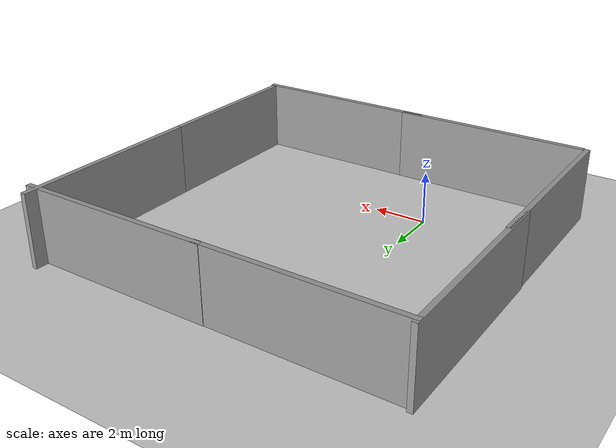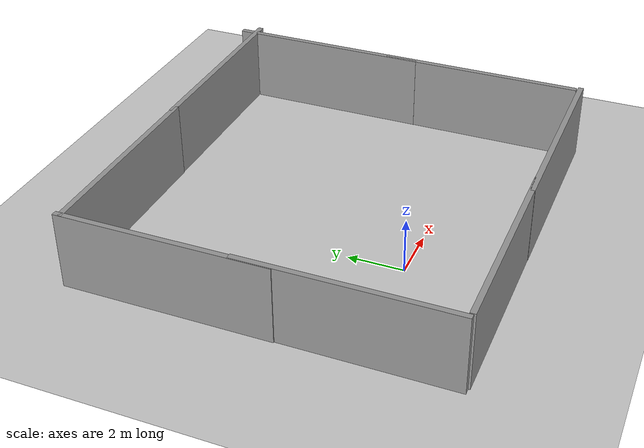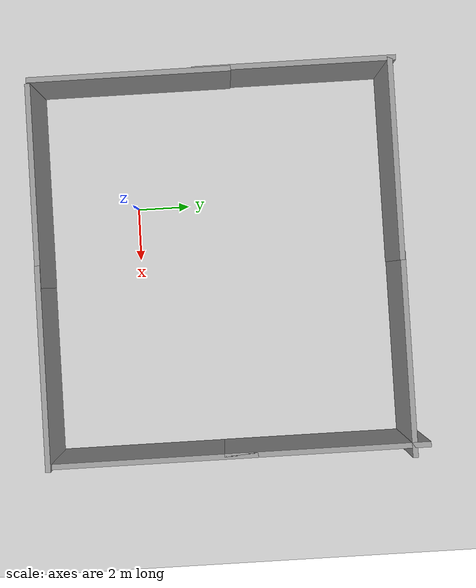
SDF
<sdf version="1.7">
 <world name="default">
  <light name="sun" type="directional">
   <pose>0 0 10 0 -0 0</pose>
   <diffuse>0.8 0.8 0.8 1</diffuse>
   <specular>0.2 0.2 0.2 1</specular>
   <attenuation>
    <range>1000</range>
    <constant>0.9</constant>
    <linear>0.01</linear>
    <quadratic>0.001</quadratic>
   </attenuation>
   <direction>-0.5 0.1 -0.9</direction>
   <spot><inner_angle>0</inner_angle><outer_angle>0</outer_angle><falloff>0</falloff></spot>
  </light>
  <model name="ground_plane">
   <static>1</static>
   <link name="link">
    <collision name="collision">
     <geometry><plane><normal>0 0 1</normal><size>100 100</size></plane></geometry>
     <surface>
      <contact><collide_bitmask>65535</collide_bitmask></contact>
      <friction><ode><mu>100</mu><mu2>50</mu2></ode></friction>
     </surface>
    </collision>
    <visual name="visual">
     <cast_shadows>0</cast_shadows>
     <geometry><plane><normal>0 0 1</normal><size>100 100</size></plane></geometry>
     <material>
      <script><uri>file://media/materials/scripts/gazebo.material</uri><name>Gazebo/Grey</name></script>
     </material>
    </visual>
   </link>
  </model>
  <gravity>0 0 -9.8</gravity>
  <magnetic_field>6e-06 2.3e-05 -4.2e-05</magnetic_field>
  <atmosphere type="adiabatic"/>
  <physics type="ode">
   <max_step_size>0.001</max_step_size>
   <real_time_factor>1</real_time_factor>
   <real_time_update_rate>1000</real_time_update_rate>
  </physics>
  <scene><ambient>0.4 0.4 0.4 1</ambient><background>0.7 0.7 0.7 1</background><shadows>1</shadows></scene>
  <spherical_coordinates>
   <surface_model>EARTH_WGS84</surface_model>
   <latitude_deg>0</latitude_deg>
   <longitude_deg>0</longitude_deg>
   <elevation>0</elevation>
   <heading_deg>0</heading_deg>
  </spherical_coordinates>
  <model name="grey_wall">
   <static>1</static>
   <link name="link">
    <pose>0 0 1.4 0 -0 0</pose>
    <collision name="collision"><geometry><box><size>7.5 0.2 2.8</size></box></geometry></collision>
    <visual name="visual">
     <cast_shadows>0</cast_shadows>
     <geometry><box><size>7.5 0.2 2.8</size></box></geometry>
     <material>
      <script>
       <uri>model://grey_wall/materials/scripts</uri>
       <uri>model://grey_wall/materials/textures</uri>
       <name>vrc/grey_wall</name>
      </script>
     </material>
    </visual>
   </link>
   <pose>-0.848948 -3.52707 0 0 -0 0</pose>
  </model>
  <model name="grey_wall_clone">
   <static>1</static>
   <link name="link">
    <pose>0 0 1.4 0 -0 0</pose>
    <collision name="collision"><geometry><box><size>7.5 0.2 2.8</size></box></geometry></collision>
    <visual name="visual">
     <cast_shadows>0</cast_shadows>
     <geometry><box><size>7.5 0.2 2.8</size></box></geometry>
     <material>
      <script>
       <uri>model://grey_wall/materials/scripts</uri>
       <uri>model://grey_wall/materials/textures</uri>
       <name>vrc/grey_wall</name>
      </script>
     </material>
    </visual>
   </link>
   <pose>-1.10287 9.77249 0 0 -0 0</pose>
  </model>
  <model name="grey_wall_clone_0">
   <static>1</static>
   <link name="link">
    <pose>0 0 1.4 0 -0 0</pose>
    <collision name="collision"><geometry><box><size>7.5 0.2 2.8</size></box></geometry></collision>
    <visual name="visual">
     <cast_shadows>0</cast_shadows>
     <geometry><box><size>7.5 0.2 2.8</size></box></geometry>
     <material>
      <script>
       <uri>model://grey_wall/materials/scripts</uri>
       <uri>model://grey_wall/materials/textures</uri>
       <name>vrc/grey_wall</name>
      </script>
     </material>
    </visual>
   </link>
   <pose>9.38181 0.351243 0 0 0 -1.5705</pose>
  </model>
  <model name="grey_wall_clone_0_clone">
   <static>1</static>
   <link name="link">
    <pose>0 0 1.4 0 -0 0</pose>
    <collision name="collision"><geometry><box><size>7.5 0.2 2.8</size></box></geometry></collision>
    <visual name="visual">
     <cast_shadows>0</cast_shadows>
     <geometry><box><size>7.5 0.2 2.8</size></box></geometry>
     <material>
      <script>
       <uri>model://grey_wall/materials/scripts</uri>
       <uri>model://grey_wall/materials/textures</uri>
       <name>vrc/grey_wall</name>
      </script>
     </material>
    </visual>
   </link>
   <pose>-4.73356 0.182466 0 0 0 -1.5705</pose>
  </model>
  <model name="grey_wall_clone_clone">
   <static>1</static>
   <link name="link">
    <pose>0 0 1.4 0 -0 0</pose>
    <collision name="collision"><geometry><box><size>7.5 0.2 2.8</size></box></geometry></collision>
    <visual name="visual">
     <cast_shadows>0</cast_shadows>
     <geometry><box><size>7.5 0.2 2.8</size></box></geometry>
     <material>
      <script>
       <uri>model://grey_wall/materials/scripts</uri>
       <uri>model://grey_wall/materials/textures</uri>
       <name>vrc/grey_wall</name>
      </script>
     </material>
    </visual>
   </link>
   <pose>6.07443 9.79002 0 0 -0 0</pose>
  </model>
  <model name="grey_wall_clone_clone_clone">
   <static>1</static>
   <link name="link">
    <pose>0 0 1.4 0 -0 0</pose>
    <collision name="collision"><geometry><box><size>7.5 0.2 2.8</size></box></geometry></collision>
    <visual name="visual">
     <cast_shadows>0</cast_shadows>
     <geometry><box><size>7.5 0.2 2.8</size></box></geometry>
     <material>
      <script>
       <uri>model://grey_wall/materials/scripts</uri>
       <uri>model://grey_wall/materials/textures</uri>
       <name>vrc/grey_wall</name>
      </script>
     </material>
    </visual>
   </link>
   <pose>5.82176 -3.53628 0 0 -0 0</pose>
  </model>
  <model name="grey_wall_clone_0_clone_clone">
   <static>1</static>
   <link name="link">
    <pose>0 0 1.4 0 -0 0</pose>
    <collision name="collision"><geometry><box><size>7.5 0.2 2.8</size></box></geometry></collision>
    <visual name="visual">
     <cast_shadows>0</cast_shadows>
     <geometry><box><size>7.5 0.2 2.8</size></box></geometry>
     <material>
      <script>
       <uri>model://grey_wall/materials/scripts</uri>
       <uri>model://grey_wall/materials/textures</uri>
       <name>vrc/grey_wall</name>
      </script>
     </material>
    </visual>
   </link>
   <pose>-4.77369 6.24255 0 0 0 -1.5705</pose>
  </model>
  <model name="grey_wall_clone_0_clone_0">
   <static>1</static>
   <link name="link">
    <pose>0 0 1.4 0 -0 0</pose>
    <collision name="collision"><geometry><box><size>7.5 0.2 2.8</size></box></geometry></collision>
    <visual name="visual">
     <cast_shadows>0</cast_shadows>
     <geometry><box><size>7.5 0.2 2.8</size></box></geometry>
     <material>
      <script>
       <uri>model://grey_wall/materials/scripts</uri>
       <uri>model://grey_wall/materials/textures</uri>
       <name>vrc/grey_wall</name>
      </script>
     </material>
    </visual>
   </link>
   <pose>9.37544 6.6315 0 0 0 -1.5705</pose>
  </model>
 </world>
</sdf>
